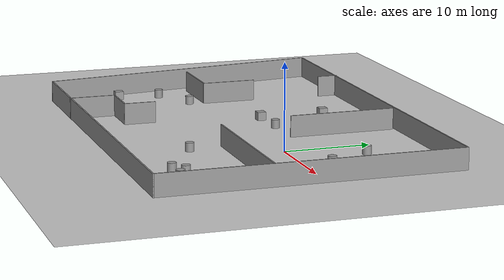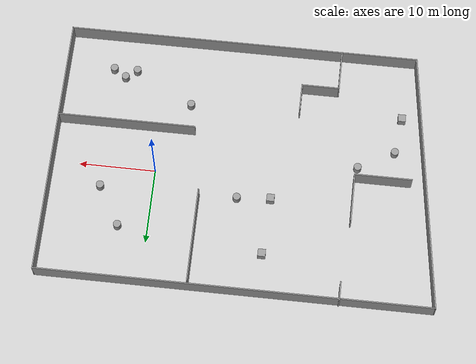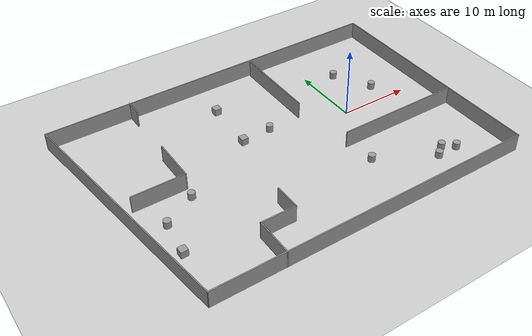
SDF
<sdf version="1.7">
 <world name="default">
  <light name="sun" type="directional">
   <pose>0 0 10 0 -0 0</pose>
   <diffuse>0.8 0.8 0.8 1</diffuse>
   <specular>0.2 0.2 0.2 1</specular>
   <attenuation>
    <range>1000</range>
    <constant>0.9</constant>
    <linear>0.01</linear>
    <quadratic>0.001</quadratic>
   </attenuation>
   <direction>-0.5 0.1 -0.9</direction>
   <spot><inner_angle>0</inner_angle><outer_angle>0</outer_angle><falloff>0</falloff></spot>
  </light>
  <model name="ground_plane">
   <static>1</static>
   <link name="link">
    <collision name="collision">
     <geometry><plane><normal>0 0 1</normal><size>100 100</size></plane></geometry>
     <surface>
      <contact><collide_bitmask>65535</collide_bitmask></contact>
      <friction><ode><mu>100</mu><mu2>50</mu2></ode></friction>
     </surface>
    </collision>
    <visual name="visual">
     <cast_shadows>0</cast_shadows>
     <geometry><plane><normal>0 0 1</normal><size>100 100</size></plane></geometry>
     <material>
      <script><uri>file://media/materials/scripts/gazebo.material</uri><name>Gazebo/Grey</name></script>
     </material>
    </visual>
   </link>
  </model>
  <gravity>0 0 -9.8</gravity>
  <magnetic_field>6e-06 2.3e-05 -4.2e-05</magnetic_field>
  <atmosphere type="adiabatic"/>
  <physics type="ode">
   <max_step_size>0.001</max_step_size>
   <real_time_factor>1</real_time_factor>
   <real_time_update_rate>1000</real_time_update_rate>
  </physics>
  <scene><ambient>0.4 0.4 0.4 1</ambient><background>0.7 0.7 0.7 1</background><shadows>1</shadows></scene>
  <audio><device>default</device></audio>
  <spherical_coordinates>
   <surface_model>EARTH_WGS84</surface_model>
   <latitude_deg>0</latitude_deg>
   <longitude_deg>0</longitude_deg>
   <elevation>0</elevation>
   <heading_deg>0</heading_deg>
  </spherical_coordinates>
  <model name="Untitled">
   <pose>-11.8927 -1.37823 0 0 -0 0</pose>
   <link name="Wall_10">
    <collision name="Wall_10_Collision">
     <geometry><box><size>50.75 0.15 2.5</size></box></geometry>
     <pose>0 0 1.25 0 -0 0</pose>
    </collision>
    <visual name="Wall_10_Visual">
     <pose>0 0 1.25 0 -0 0</pose>
     <geometry><box><size>50.75 0.15 2.5</size></box></geometry>
     <material>
      <script><uri>file://media/materials/scripts/gazebo.material</uri><name>Gazebo/Grey</name></script>
      <ambient>1 1 1 1</ambient>
     </material>
     <meta><layer>0</layer></meta>
    </visual>
    <pose>0.004552 17.1157 0 0 -0 0</pose>
   </link>
   <link name="Wall_11">
    <collision name="Wall_11_Collision">
     <geometry><box><size>34.5 0.15 2.5</size></box></geometry>
     <pose>0 0 1.25 0 -0 0</pose>
    </collision>
    <visual name="Wall_11_Visual">
     <pose>0 0 1.25 0 -0 0</pose>
     <geometry><box><size>34.5 0.15 2.5</size></box></geometry>
     <material>
      <script><uri>file://media/materials/scripts/gazebo.material</uri><name>Gazebo/Grey</name></script>
      <ambient>1 1 1 1</ambient>
     </material>
     <meta><layer>0</layer></meta>
    </visual>
    <pose>25.3046 -0.059301 0 0 -0 -1.5708</pose>
   </link>
   <link name="Wall_12">
    <collision name="Wall_12_Collision">
     <geometry><box><size>46.25 0.15 2.5</size></box></geometry>
     <pose>0 0 1.25 0 -0 0</pose>
    </collision>
    <visual name="Wall_12_Visual">
     <pose>0 0 1.25 0 -0 0</pose>
     <geometry><box><size>46.25 0.15 2.5</size></box></geometry>
     <material>
      <script><uri>file://media/materials/scripts/gazebo.material</uri><name>Gazebo/Grey</name></script>
      <ambient>1 1 1 1</ambient>
     </material>
     <meta><layer>0</layer></meta>
    </visual>
    <pose>2.25455 -17.2343 0 0 -0 3.14159</pose>
   </link>
   <link name="Wall_13">
    <collision name="Wall_13_Collision">
     <geometry><box><size>34.7935 0.15 2.5</size></box></geometry>
     <pose>0 0 1.25 0 -0 0</pose>
    </collision>
    <visual name="Wall_13_Visual">
     <pose>0 0 1.25 0 -0 0</pose>
     <geometry><box><size>34.7935 0.15 2.5</size></box></geometry>
     <material>
      <script><uri>file://media/materials/scripts/gazebo.material</uri><name>Gazebo/Grey</name></script>
      <ambient>1 1 1 1</ambient>
     </material>
     <meta><layer>0</layer></meta>
    </visual>
    <pose>-23.0454 -0.059301 0 0 -0 1.70106</pose>
   </link>
   <link name="Wall_15">
    <collision name="Wall_15_Collision">
     <geometry><box><size>12.5 0.15 2.5</size></box></geometry>
     <pose>0 0 1.25 0 -0 0</pose>
    </collision>
    <visual name="Wall_15_Visual">
     <pose>0 0 1.25 0 -0 0</pose>
     <geometry><box><size>12.5 0.15 2.5</size></box></geometry>
     <material>
      <script><uri>file://media/materials/scripts/gazebo.material</uri><name>Gazebo/Grey</name></script>
      <ambient>1 1 1 1</ambient>
     </material>
     <meta><layer>0</layer></meta>
    </visual>
    <pose>5.83766 10.5544 0 0 -0 1.5708</pose>
   </link>
   <link name="Wall_17">
    <collision name="Wall_17_Collision">
     <geometry><box><size>2.5 0.15 2.5</size></box></geometry>
     <pose>0 0 1.25 0 -0 0</pose>
    </collision>
    <visual name="Wall_17_Visual">
     <pose>0 0 1.25 0 -0 0</pose>
     <geometry><box><size>2.5 0.15 2.5</size></box></geometry>
     <material>
      <script><uri>file://media/materials/scripts/gazebo.material</uri><name>Gazebo/Grey</name></script>
      <ambient>1 1 1 1</ambient>
     </material>
     <meta><layer>0</layer></meta>
    </visual>
    <pose>-13.3375 16.0972 0 0 -0 1.5708</pose>
   </link>
   <link name="Wall_19">
    <collision name="Wall_19_Collision">
     <geometry><box><size>5.5 0.15 2.5</size></box></geometry>
     <pose>0 0 1.25 0 -0 0</pose>
    </collision>
    <visual name="Wall_19_Visual">
     <pose>0 0 1.25 0 -0 0</pose>
     <geometry><box><size>5.5 0.15 2.5</size></box></geometry>
     <material>
      <script><uri>file://media/materials/scripts/gazebo.material</uri><name>Gazebo/Grey</name></script>
      <ambient>1 1 1 1</ambient>
     </material>
     <meta><layer>0</layer></meta>
    </visual>
    <pose>-10.861 -14.5972 0 0 -0 1.5708</pose>
   </link>
   <link name="Wall_20">
    <collision name="Wall_20_Collision">
     <geometry><box><size>5 0.15 2.5</size></box></geometry>
     <pose>0 0 1.25 0 -0 0</pose>
    </collision>
    <visual name="Wall_20_Visual">
     <pose>0 0 1.25 0 -0 0</pose>
     <geometry><box><size>5 0.15 2.5</size></box></geometry>
     <material>
      <script><uri>file://media/materials/scripts/gazebo.material</uri><name>Gazebo/Grey</name></script>
      <ambient>1 1 1 1</ambient>
     </material>
     <meta><layer>0</layer></meta>
    </visual>
    <pose>-8.43601 -11.9222 0 0 -0 0</pose>
   </link>
   <link name="Wall_21">
    <collision name="Wall_21_Collision">
     <geometry><box><size>3.75 0.15 2.5</size></box></geometry>
     <pose>0 0 1.25 0 -0 0</pose>
    </collision>
    <visual name="Wall_21_Visual">
     <pose>0 0 1.25 0 -0 0</pose>
     <geometry><box><size>3.75 0.15 2.5</size></box></geometry>
     <material>
      <script><uri>file://media/materials/scripts/gazebo.material</uri><name>Gazebo/Grey</name></script>
      <ambient>1 1 1 1</ambient>
     </material>
     <meta><layer>0</layer></meta>
    </visual>
    <pose>-6.01101 -10.1222 0 0 -0 1.5708</pose>
   </link>
   <link name="Wall_23">
    <collision name="Wall_23_Collision">
     <geometry><box><size>7.5 0.15 2.5</size></box></geometry>
     <pose>0 0 1.25 0 -0 0</pose>
    </collision>
    <visual name="Wall_23_Visual">
     <pose>0 0 1.25 0 -0 0</pose>
     <geometry><box><size>7.5 0.15 2.5</size></box></geometry>
     <material>
      <script><uri>file://media/materials/scripts/gazebo.material</uri><name>Gazebo/Grey</name></script>
      <ambient>1 1 1 1</ambient>
     </material>
     <meta><layer>0</layer></meta>
    </visual>
    <pose>-17.5873 0.134005 0 0 -0 0</pose>
   </link>
   <link name="Wall_24">
    <collision name="Wall_24_Collision">
     <geometry><box><size>6.5 0.15 2.5</size></box></geometry>
     <pose>0 0 1.25 0 -0 0</pose>
    </collision>
    <visual name="Wall_24_Visual">
     <pose>0 0 1.25 0 -0 0</pose>
     <geometry><box><size>6.5 0.15 2.5</size></box></geometry>
     <material>
      <script><uri>file://media/materials/scripts/gazebo.material</uri><name>Gazebo/Grey</name></script>
      <ambient>1 1 1 1</ambient>
     </material>
     <meta><layer>0</layer></meta>
    </visual>
    <pose>-13.9123 3.309 0 0 -0 1.5708</pose>
   </link>
   <link name="Wall_27">
    <collision name="Wall_27_Collision">
     <geometry><box><size>18 0.15 2.5</size></box></geometry>
     <pose>0 0 1.25 0 -0 0</pose>
    </collision>
    <visual name="Wall_27_Visual">
     <pose>0 0 1.25 0 -0 0</pose>
     <geometry><box><size>18 0.15 2.5</size></box></geometry>
     <material>
      <script><uri>file://media/materials/scripts/gazebo.material</uri><name>Gazebo/Grey</name></script>
      <ambient>1 1 1 1</ambient>
     </material>
     <meta><layer>0</layer></meta>
    </visual>
    <pose>16.3001 -4.39445 0 0 -0 3.14159</pose>
   </link>
   <static>1</static>
  </model>
  <model name="unit_box">
   <pose>-14.9448 10.1435 0.5 0 -0 0</pose>
   <link name="link">
    <inertial>
     <mass>1</mass>
     <inertia>
      <ixx>0.166667</ixx>
      <ixy>0</ixy>
      <ixz>0</ixz>
      <iyy>0.166667</iyy>
      <iyz>0</iyz>
      <izz>0.166667</izz>
     </inertia>
    </inertial>
    <collision name="collision"><geometry><box><size>1 1 1</size></box></geometry></collision>
    <visual name="visual">
     <geometry><box><size>1 1 1</size></box></geometry>
     <material>
      <script><name>Gazebo/Grey</name><uri>file://media/materials/scripts/gazebo.material</uri></script>
     </material>
    </visual>
   </link>
  </model>
  <model name="unit_cylinder">
   <pose>-3.52187 -9.76345 0.5 0 -0 0</pose>
   <link name="link">
    <inertial>
     <mass>1</mass>
     <inertia><ixx>0.145833</ixx><ixy>0</ixy><ixz>0</ixz><iyy>0.145833</iyy><iyz>0</iyz><izz>0.125</izz></inertia>
    </inertial>
    <collision name="collision">
     <geometry><cylinder><radius>0.5</radius><length>1</length></cylinder></geometry>
    </collision>
    <visual name="visual">
     <geometry><cylinder><radius>0.5</radius><length>1</length></cylinder></geometry>
     <material>
      <script><name>Gazebo/Grey</name><uri>file://media/materials/scripts/gazebo.material</uri></script>
     </material>
    </visual>
   </link>
  </model>
  <model name="unit_cylinder_0">
   <pose>3.84787 8.19686 0.5 0 -0 0</pose>
   <link name="link">
    <inertial>
     <mass>1</mass>
     <inertia><ixx>0.145833</ixx><ixy>0</ixy><ixz>0</ixz><iyy>0.145833</iyy><iyz>0</iyz><izz>0.125</izz></inertia>
    </inertial>
    <collision name="collision">
     <geometry><cylinder><radius>0.5</radius><length>1</length></cylinder></geometry>
    </collision>
    <visual name="visual">
     <geometry><cylinder><radius>0.5</radius><length>1</length></cylinder></geometry>
     <material>
      <script><name>Gazebo/Grey</name><uri>file://media/materials/scripts/gazebo.material</uri></script>
     </material>
    </visual>
   </link>
  </model>
  <model name="unit_cylinder_1">
   <pose>6.82172 2.99134 0.5 0 -0 0</pose>
   <link name="link">
    <inertial>
     <mass>1</mass>
     <inertia><ixx>0.145833</ixx><ixy>0</ixy><ixz>0</ixz><iyy>0.145833</iyy><iyz>0</iyz><izz>0.125</izz></inertia>
    </inertial>
    <collision name="collision">
     <geometry><cylinder><radius>0.5</radius><length>1</length></cylinder></geometry>
    </collision>
    <visual name="visual">
     <geometry><cylinder><radius>0.5</radius><length>1</length></cylinder></geometry>
     <material>
      <script><name>Gazebo/Grey</name><uri>file://media/materials/scripts/gazebo.material</uri></script>
     </material>
    </visual>
   </link>
  </model>
  <model name="unit_cylinder_2">
   <pose>7.29575 -13.9962 0.5 0 -0 0</pose>
   <link name="link">
    <inertial>
     <mass>1</mass>
     <inertia><ixx>0.145833</ixx><ixy>0</ixy><ixz>0</ixz><iyy>0.145833</iyy><iyz>0</iyz><izz>0.125</izz></inertia>
    </inertial>
    <collision name="collision">
     <geometry><cylinder><radius>0.5</radius><length>1</length></cylinder></geometry>
    </collision>
    <visual name="visual">
     <geometry><cylinder><radius>0.5</radius><length>1</length></cylinder></geometry>
     <material>
      <script><name>Gazebo/Grey</name><uri>file://media/materials/scripts/gazebo.material</uri></script>
     </material>
    </visual>
   </link>
  </model>
  <model name="unit_cylinder_3">
   <pose>4.21358 -14.039 0.5 0 -0 0</pose>
   <link name="link">
    <inertial>
     <mass>1</mass>
     <inertia><ixx>0.145833</ixx><ixy>0</ixy><ixz>0</ixz><iyy>0.145833</iyy><iyz>0</iyz><izz>0.125</izz></inertia>
    </inertial>
    <collision name="collision">
     <geometry><cylinder><radius>0.5</radius><length>1</length></cylinder></geometry>
    </collision>
    <visual name="visual">
     <geometry><cylinder><radius>0.5</radius><length>1</length></cylinder></geometry>
     <material>
      <script><name>Gazebo/Grey</name><uri>file://media/materials/scripts/gazebo.material</uri></script>
     </material>
    </visual>
   </link>
  </model>
  <model name="unit_cylinder_4">
   <pose>5.65263 -12.9143 0.5 0 -0 0</pose>
   <link name="link">
    <inertial>
     <mass>1</mass>
     <inertia><ixx>0.145833</ixx><ixy>0</ixy><ixz>0</ixz><iyy>0.145833</iyy><iyz>0</iyz><izz>0.125</izz></inertia>
    </inertial>
    <collision name="collision">
     <geometry><cylinder><radius>0.5</radius><length>1</length></cylinder></geometry>
    </collision>
    <visual name="visual">
     <geometry><cylinder><radius>0.5</radius><length>1</length></cylinder></geometry>
     <material>
      <script><name>Gazebo/Grey</name><uri>file://media/materials/scripts/gazebo.material</uri></script>
     </material>
    </visual>
   </link>
  </model>
  <model name="unit_cylinder_5">
   <pose>-30.7981 -5.64213 0.5 0 -0 0</pose>
   <link name="link">
    <inertial>
     <mass>1</mass>
     <inertia><ixx>0.145833</ixx><ixy>0</ixy><ixz>0</ixz><iyy>0.145833</iyy><iyz>0</iyz><izz>0.125</izz></inertia>
    </inertial>
    <collision name="collision">
     <geometry><cylinder><radius>0.5</radius><length>1</length></cylinder></geometry>
    </collision>
    <visual name="visual">
     <geometry><cylinder><radius>0.5</radius><length>1</length></cylinder></geometry>
     <material>
      <script><name>Gazebo/Grey</name><uri>file://media/materials/scripts/gazebo.material</uri></script>
     </material>
    </visual>
   </link>
  </model>
  <model name="unit_box_0">
   <pose>-31.3912 -10.5867 0.5 0 -0 0</pose>
   <link name="link">
    <inertial>
     <mass>1</mass>
     <inertia>
      <ixx>0.166667</ixx>
      <ixy>0</ixy>
      <ixz>0</ixz>
      <iyy>0.166667</iyy>
      <iyz>0</iyz>
      <izz>0.166667</izz>
     </inertia>
    </inertial>
    <collision name="collision"><geometry><box><size>1 1 1</size></box></geometry></collision>
    <visual name="visual">
     <geometry><box><size>1 1 1</size></box></geometry>
     <material>
      <script><name>Gazebo/Grey</name><uri>file://media/materials/scripts/gazebo.material</uri></script>
     </material>
    </visual>
   </link>
  </model>
  <model name="unit_box_1">
   <pose>-15.3071 2.50607 0.5 0 -0 0</pose>
   <link name="link">
    <inertial>
     <mass>1</mass>
     <inertia>
      <ixx>0.166667</ixx>
      <ixy>0</ixy>
      <ixz>0</ixz>
      <iyy>0.166667</iyy>
      <iyz>0</iyz>
      <izz>0.166667</izz>
     </inertia>
    </inertial>
    <collision name="collision"><geometry><box><size>1 1 1</size></box></geometry></collision>
    <visual name="visual">
     <geometry><box><size>1 1 1</size></box></geometry>
     <material>
      <script><name>Gazebo/Grey</name><uri>file://media/materials/scripts/gazebo.material</uri></script>
     </material>
    </visual>
   </link>
  </model>
  <model name="unit_cylinder_6">
   <pose>-10.9535 2.82448 0.5 0 -0 0</pose>
   <link name="link">
    <inertial>
     <mass>1</mass>
     <inertia><ixx>0.145833</ixx><ixy>0</ixy><ixz>0</ixz><iyy>0.145833</iyy><iyz>0</iyz><izz>0.125</izz></inertia>
    </inertial>
    <collision name="collision">
     <geometry><cylinder><radius>0.5</radius><length>1</length></cylinder></geometry>
    </collision>
    <visual name="visual">
     <geometry><cylinder><radius>0.5</radius><length>1</length></cylinder></geometry>
     <material>
      <script><name>Gazebo/Grey</name><uri>file://media/materials/scripts/gazebo.material</uri></script>
     </material>
    </visual>
   </link>
  </model>
  <model name="unit_cylinder_7">
   <pose>-26.1314 -3.00607 0.5 0 -0 0</pose>
   <link name="link">
    <inertial>
     <mass>1</mass>
     <inertia><ixx>0.145833</ixx><ixy>0</ixy><ixz>0</ixz><iyy>0.145833</iyy><iyz>0</iyz><izz>0.125</izz></inertia>
    </inertial>
    <collision name="collision">
     <geometry><cylinder><radius>0.5</radius><length>1</length></cylinder></geometry>
    </collision>
    <visual name="visual">
     <geometry><cylinder><radius>0.5</radius><length>1</length></cylinder></geometry>
     <material>
      <script><name>Gazebo/Grey</name><uri>file://media/materials/scripts/gazebo.material</uri></script>
     </material>
    </visual>
   </link>
  </model>
 </world>
</sdf>
